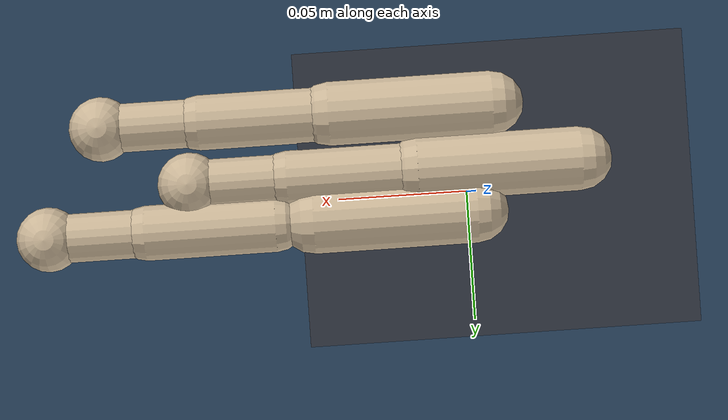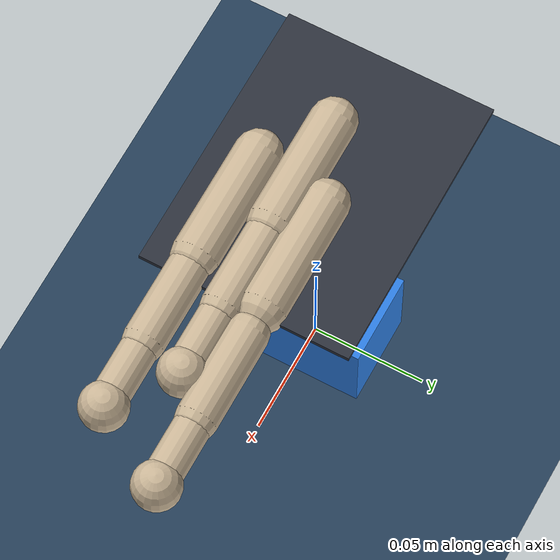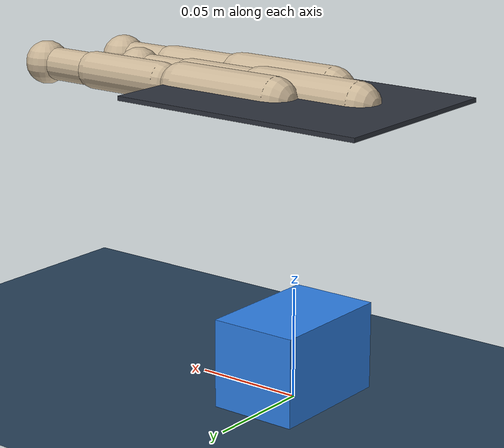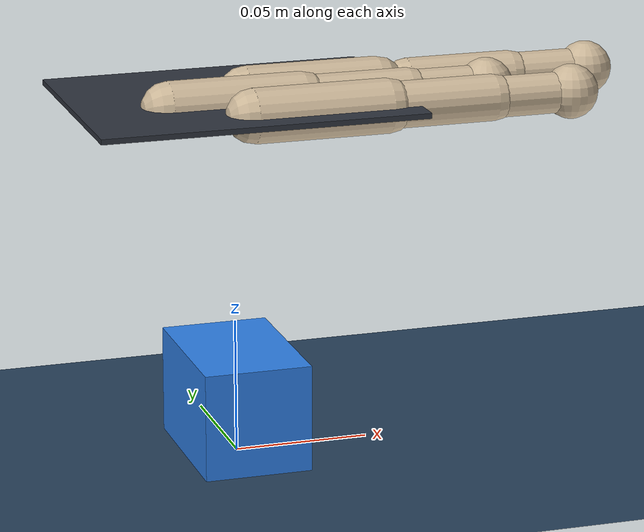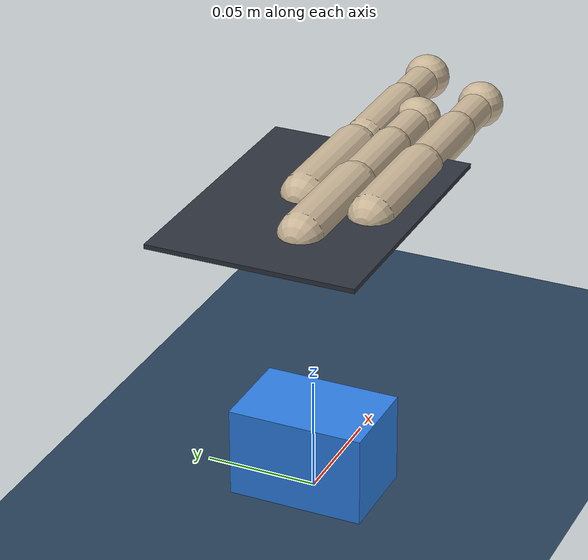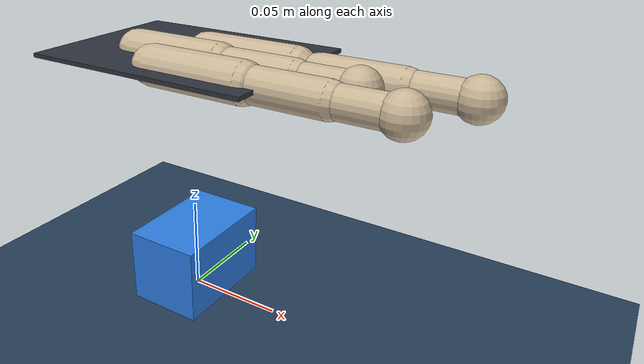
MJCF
<mujoco model="scene_prism2_tp0d0038p0d0208p0d0000_ip0d0064n0d0233p0d0116_mn0d0002p0d0039p0d0000">
  <compiler angle="radian" autolimits="true" />
  <option timestep="0.002" gravity="0 0 -9.81" integrator="implicitfast" />
  <visual>
    <headlight ambient=".4 .4 .4" diffuse=".8 .8 .8" specular="0.1 0.1 0.1" />
    <map znear=".01" />
    <quality shadowsize="2048" />
    <global elevation="-15" />
  </visual>
  <default>
    <geom friction="1.0 0.05 0.001" solref="0.01 1" solimp="0.95 0.99 0.001" />
    <motor ctrlrange="-1 1" ctrllimited="true" />
    <default class="pose">
      <joint damping="2.0" armature="0.01" />
      <position kp="4000" kv="100" forcerange="-1000 1000" />
    </default>
    <default class="ctrl">
      <joint damping="0.5" armature="0.001" />
      <position kp="30" kv="0.5" gear="1" forcerange="-10 10" ctrlrange="-1 1" />
    </default>
  </default>
  <asset>
    <texture type="skybox" builtin="gradient" rgb1="0.3 0.5 0.7" rgb2="0 0 0" width="512" height="3072" />
    <texture type="2d" name="groundplane" builtin="checker" mark="edge" rgb1="0.2 0.3 0.4" rgb2="0.1 0.2 0.3" markrgb="0.8 0.8 0.8" width="300" height="300" />
    <material name="groundplane" texture="groundplane" texuniform="true" texrepeat="5 5" reflectance="0.2" />
    <texture name="grid" type="2d" builtin="checker" rgb1="0.15 0.15 0.15" rgb2="0.25 0.25 0.25" width="256" height="256" />
    <material name="table_mat" texture="grid" texrepeat="3 3" reflectance="0.2" />
    <material name="palm_mat" rgba="0.18 0.2 0.24 1" />
    <material name="finger_mat" rgba="0.8 0.72 0.6 1" />
    <material name="object_mat" rgba="0.18 0.5 0.9 1" />
  </asset>
  <worldbody>
    <light pos="0 0 1.5" dir="0 0 -1" directional="true" diffuse=".6 .6 .6" specular=".2 .2 .2" />
    <light pos="0.5 0.5 1.0" dir="-1 -1 -1" directional="true" diffuse=".4 .4 .4" specular=".1 .1 .1" />
    <geom name="floor" type="plane" size="1.5 1.5 0.1" material="groundplane" />
    <body name="cube" pos="0.000000 0.000000 0.020000">
      <freejoint />
      <geom type="box" size="0.020000 0.030000 0.020000" density="500" material="object_mat" />
    </body>
    <body gravcomp="1" name="palm_pose" pos="0 0 0.134">
      <joint class="pose" name="palm_px" type="slide" axis="1 0 0" range="-0.20 0.20" />
      <joint class="pose" name="palm_py" type="slide" axis="0 1 0" range="-0.20 0.20" />
      <joint class="pose" name="palm_pz" type="slide" axis="0 0 1" range="-0.15 0.35" />
      <joint class="pose" name="palm_rx" type="hinge" axis="1 0 0" range="-1.57 1.57" />
      <joint class="pose" name="palm_ry" type="hinge" axis="0 1 0" range="-1.57 1.57" />
      <joint class="pose" name="palm_rz" type="hinge" axis="0 0 1" range="-3.14 3.14" />
      <geom type="box" size="0.06 0.045 0.001" material="palm_mat" />
      <body name="thumb_mount" pos="-0.026195 -0.007245 0">
        <inertial pos="0 0 0" mass="0.001" diaginertia="1e-6 1e-6 1e-6" />
        <body name="thumb_yaw_frame">
          <inertial pos="0 0 0" mass="0.001" diaginertia="1e-6 1e-6 1e-6" />
          <joint class="ctrl" name="thumb_yaw" type="hinge" axis="1 0 0" range="-1.1 1.1" />
          <body name="thumb_mcp_frame">
            <joint class="ctrl" name="thumb_mcp" type="hinge" axis="0 1 0" range="0 3.14" />
            <geom type="capsule" fromto="0 0 0 0.05 0 0" size="0.010" material="finger_mat" />
            <body name="thumb_len_frame" pos="0.05 0 0">
              <geom type="capsule" fromto="0 0 0 0.04 0 0" size="0.0085" material="finger_mat" />
              <body name="thumb_pip_frame" pos="0.04 0 0">
                <joint class="ctrl" name="thumb_pip" type="hinge" axis="0 1 0" range="-1.2 0.5" />
                <geom type="capsule" fromto="0 0 0 0.03 0 0" size="0.0075" material="finger_mat" />
                <body name="thumb_tip" pos="0.03 0 0">
                  <geom type="sphere" size="0.010" material="finger_mat" />
                </body>
              </body>
            </body>
          </body>
        </body>
      </body>
      <body name="index_mount" pos="0.006449 0.006675 0">
        <inertial pos="0 0 0" mass="0.001" diaginertia="1e-6 1e-6 1e-6" />
        <body name="index_yaw_frame">
          <inertial pos="0 0 0" mass="0.001" diaginertia="1e-6 1e-6 1e-6" />
          <joint class="ctrl" name="index_yaw" type="hinge" axis="1 0 0" range="-1.1 1.1" />
          <body name="index_mcp_frame">
            <joint class="ctrl" name="index_mcp" type="hinge" axis="0 1 0" range="0 2.5" />
            <geom type="capsule" fromto="0 0 0 0.05 0 0" size="0.010" material="finger_mat" />
            <body name="index_len_frame" pos="0.061591 0 0">
              <geom type="capsule" fromto="0 0 0 0.04 0 0" size="0.0085" material="finger_mat" />
              <body name="index_pip_frame" pos="0.04 0 0">
                <joint class="ctrl" name="index_pip" type="hinge" axis="0 1 0" range="-1.2 1.57" />
                <geom type="capsule" fromto="0 0 0 0.03 0 0" size="0.0075" material="finger_mat" />
                <body name="index_tip" pos="0.03 0 0">
                  <geom type="sphere" size="0.010" material="finger_mat" />
                </body>
              </body>
            </body>
          </body>
        </body>
      </body>
      <body name="middle_mount" pos="-0.000195 -0.026089 0">
        <inertial pos="0 0 0" mass="0.001" diaginertia="1e-6 1e-6 1e-6" />
        <body name="middle_yaw_frame">
          <inertial pos="0 0 0" mass="0.001" diaginertia="1e-6 1e-6 1e-6" />
          <joint class="ctrl" name="middle_yaw" type="hinge" axis="1 0 0" range="-1.1 1.1" />
          <body name="middle_mcp_frame">
            <joint class="ctrl" name="middle_mcp" type="hinge" axis="0 1 0" range="0 2.5" />
            <geom type="capsule" fromto="0 0 0 0.05 0 0" size="0.010" material="finger_mat" />
            <body name="middle_len_frame" pos="0.05 0 0">
              <geom type="capsule" fromto="0 0 0 0.04 0 0" size="0.0085" material="finger_mat" />
              <body name="middle_pip_frame" pos="0.04 0 0">
                <joint class="ctrl" name="middle_pip" type="hinge" axis="0 1 0" range="-1.2 1.57" />
                <geom type="capsule" fromto="0 0 0 0.03 0 0" size="0.0075" material="finger_mat" />
                <body name="middle_tip" pos="0.03 0 0">
                  <geom type="sphere" size="0.010" material="finger_mat" />
                </body>
              </body>
            </body>
          </body>
        </body>
      </body>
    </body>
  </worldbody>
  <actuator>
    <position class="pose" name="a_palm_px" joint="palm_px" ctrlrange="-0.20 0.20" />
    <position class="pose" name="a_palm_py" joint="palm_py" ctrlrange="-0.20 0.20" />
    <position class="pose" name="a_palm_pz" joint="palm_pz" ctrlrange="-0.15 0.35" />
    <position class="pose" name="a_palm_rx" joint="palm_rx" ctrlrange="-1.57 1.57" />
    <position class="pose" name="a_palm_ry" joint="palm_ry" ctrlrange="-1.57 1.57" />
    <position class="pose" name="a_palm_rz" joint="palm_rz" ctrlrange="-3.14 3.14" />
    <position class="ctrl" name="a_thumb_yaw" joint="thumb_yaw" ctrlrange="-1.1 1.1" />
    <position class="ctrl" name="a_thumb_mcp" joint="thumb_mcp" ctrlrange="0 3.14" />
    <position class="ctrl" name="a_thumb_pip" joint="thumb_pip" ctrlrange="-1.2 0.5" />
    <position class="ctrl" name="a_index_yaw" joint="index_yaw" ctrlrange="-1.1 1.1" />
    <position class="ctrl" name="a_index_mcp" joint="index_mcp" ctrlrange="0 2.5" />
    <position class="ctrl" name="a_index_pip" joint="index_pip" ctrlrange="-1.2 1.57" />
    <position class="ctrl" name="a_middle_yaw" joint="middle_yaw" ctrlrange="-1.1 1.1" />
    <position class="ctrl" name="a_middle_mcp" joint="middle_mcp" ctrlrange="0 2.5" />
    <position class="ctrl" name="a_middle_pip" joint="middle_pip" ctrlrange="-1.2 1.57" />
  </actuator>
  <keyframe>
    <key name="open" qpos="&#10;        0 0 0.02 1 0 0 0 0.02 0 0 0 0 0 0 2 -0.707 0 1.25 1 0 1.25 1&#10;      " ctrl="&#10;        0.02 0 0 0 0 0 0 2 -0.707 0 1.25 1 0 1.25 1&#10;      " />
    <key name="foundational" qpos="&#10;        -0.001658966413 -0.002014354143 0.02176517055 0.9806376243 0.01766489993 0.01811613706 0.1941896151 0.01998128803 -6.785773942e-06 -0.000420889671 2.202864296e-06 -3.830993981e-06 -4.524000986e-07 0.007746074095 1.923803347 -0.5498390907 0.09299433925 1.372437466 1.169671188 -0.1992688959 1.534187778 1.118907249&#10;      " ctrl="&#10;        0.02 0 0 0 0 0 0.04759260414 1.838513475 -0.5715285052 0.05293271743 1.45939719 1.184301786 -0.1994262222 1.534226074 1.118972875&#10;      " />
  </keyframe>
</mujoco>
